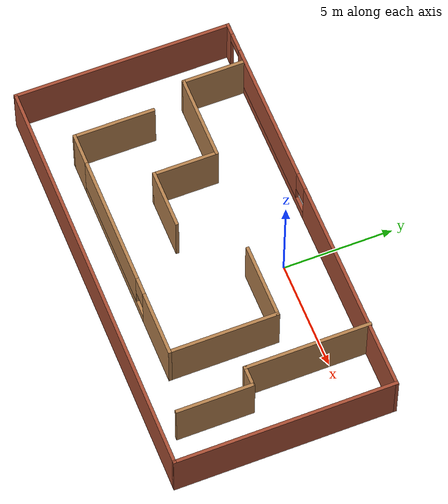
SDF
<?xml version='1.0'?>
<sdf version='1.7'>
  <model name='map'>
    <pose>-1.43573 -3.17598 0 0 -0 0</pose>
    <link name='Wall_0'>
      <collision name='Wall_0_Collision'>
        <geometry>
          <box>
            <size>10 0.15 2.5</size>
          </box>
        </geometry>
        <pose>0 0 1.25 0 -0 0</pose>
      </collision>
      <visual name='Wall_0_Visual'>
        <pose>0 0 1.25 0 -0 0</pose>
        <geometry>
          <box>
            <size>10 0.15 2.5</size>
          </box>
        </geometry>
        <material>
          <script>
            <uri>file://media/materials/scripts/gazebo.material</uri>
            <name>Gazebo/Bricks</name>
          </script>
          <ambient>1 1 1 1</ambient>
        </material>
        <meta>
          <layer>0</layer>
        </meta>
      </visual>
      <pose>-9.425 -0.02313 0 0 -0 -1.5708</pose>
    </link>
    <link name='Wall_10'>
      <collision name='Wall_10_Collision'>
        <geometry>
          <box>
            <size>3 0.15 2.5</size>
          </box>
        </geometry>
        <pose>0 0 1.25 0 -0 0</pose>
      </collision>
      <visual name='Wall_10_Visual'>
        <pose>0 0 1.25 0 -0 0</pose>
        <geometry>
          <box>
            <size>3 0.15 2.5</size>
          </box>
        </geometry>
        <material>
          <script>
            <uri>file://media/materials/scripts/gazebo.material</uri>
            <name>Gazebo/Wood</name>
          </script>
          <ambient>1 1 1 1</ambient>
        </material>
        <meta>
          <layer>0</layer>
        </meta>
      </visual>
      <pose>-7.43577 3.47687 0 0 -0 -1.5708</pose>
    </link>
    <link name='Wall_11'>
      <collision name='Wall_11_Collision'>
        <geometry>
          <box>
            <size>4 0.15 2.5</size>
          </box>
        </geometry>
        <pose>0 0 1.25 0 -0 0</pose>
      </collision>
      <visual name='Wall_11_Visual'>
        <pose>0 0 1.25 0 -0 0</pose>
        <geometry>
          <box>
            <size>4 0.15 2.5</size>
          </box>
        </geometry>
        <material>
          <script>
            <uri>file://media/materials/scripts/gazebo.material</uri>
            <name>Gazebo/Wood</name>
          </script>
          <ambient>1 1 1 1</ambient>
        </material>
        <meta>
          <layer>0</layer>
        </meta>
      </visual>
      <pose>-5.51077 2.05187 0 0 -0 0</pose>
    </link>
    <link name='Wall_12'>
      <collision name='Wall_12_Collision'>
        <geometry>
          <box>
            <size>3 0.15 2.5</size>
          </box>
        </geometry>
        <pose>0 0 1.25 0 -0 0</pose>
      </collision>
      <visual name='Wall_12_Visual'>
        <pose>0 0 1.25 0 -0 0</pose>
        <geometry>
          <box>
            <size>3 0.15 2.5</size>
          </box>
        </geometry>
        <material>
          <script>
            <uri>file://media/materials/scripts/gazebo.material</uri>
            <name>Gazebo/Wood</name>
          </script>
          <ambient>1 1 1 1</ambient>
        </material>
        <meta>
          <layer>0</layer>
        </meta>
      </visual>
      <pose>-3.58577 0.626869 0 0 -0 -1.5708</pose>
    </link>
    <link name='Wall_15'>
      <collision name='Wall_15_Collision'>
        <geometry>
          <box>
            <size>3.5 0.15 2.5</size>
          </box>
        </geometry>
        <pose>0 0 1.25 0 -0 0</pose>
      </collision>
      <visual name='Wall_15_Visual'>
        <pose>0 0 1.25 0 -0 0</pose>
        <geometry>
          <box>
            <size>3.5 0.15 2.5</size>
          </box>
        </geometry>
        <material>
          <script>
            <uri>file://media/materials/scripts/gazebo.material</uri>
            <name>Gazebo/Wood</name>
          </script>
          <ambient>1 1 1 1</ambient>
        </material>
        <meta>
          <layer>0</layer>
        </meta>
      </visual>
      <pose>2.93923 1.55187 0 0 -0 0</pose>
    </link>
    <link name='Wall_16'>
      <collision name='Wall_16_Collision'>
        <geometry>
          <box>
            <size>5 0.15 2.5</size>
          </box>
        </geometry>
        <pose>0 0 1.25 0 -0 0</pose>
      </collision>
      <visual name='Wall_16_Visual'>
        <pose>0 0 1.25 0 -0 0</pose>
        <geometry>
          <box>
            <size>5 0.15 2.5</size>
          </box>
        </geometry>
        <material>
          <script>
            <uri>file://media/materials/scripts/gazebo.material</uri>
            <name>Gazebo/Wood</name>
          </script>
          <ambient>1 1 1 1</ambient>
        </material>
        <meta>
          <layer>0</layer>
        </meta>
      </visual>
      <pose>4.61423 -0.87313 0 0 -0 -1.5708</pose>
    </link>
    <link name='Wall_17'>
      <pose>-0.310768 -3.29813 0 0 -0 3.14159</pose>
      <visual name='Wall_17_Visual_0'>
        <pose>-3.49762 0 1.25 0 -0 0</pose>
        <geometry>
          <box>
            <size>3.00476 0.15 2.5</size>
          </box>
        </geometry>
        <material>
          <script>
            <uri>file://media/materials/scripts/gazebo.material</uri>
            <name>Gazebo/Wood</name>
          </script>
          <ambient>1 1 1 1</ambient>
        </material>
        <meta>
          <layer>0</layer>
        </meta>
      </visual>
      <collision name='Wall_17_Collision_0'>
        <geometry>
          <box>
            <size>3.00476 0.15 2.5</size>
          </box>
        </geometry>
        <pose>-3.49762 0 1.25 0 -0 0</pose>
      </collision>
      <visual name='Wall_17_Visual_1'>
        <pose>1.50238 0 0.25 0 -0 0</pose>
        <geometry>
          <box>
            <size>6.99524 0.15 0.5</size>
          </box>
        </geometry>
        <material>
          <script>
            <uri>file://media/materials/scripts/gazebo.material</uri>
            <name>Gazebo/Wood</name>
          </script>
          <ambient>1 1 1 1</ambient>
        </material>
        <meta>
          <layer>0</layer>
        </meta>
      </visual>
      <collision name='Wall_17_Collision_1'>
        <geometry>
          <box>
            <size>6.99524 0.15 0.5</size>
          </box>
        </geometry>
        <pose>1.50238 0 0.25 0 -0 0</pose>
      </collision>
      <visual name='Wall_17_Visual_2'>
        <pose>1.90238 0 1.5 0 -0 0</pose>
        <geometry>
          <box>
            <size>6.19524 0.15 2</size>
          </box>
        </geometry>
        <material>
          <script>
            <uri>file://media/materials/scripts/gazebo.material</uri>
            <name>Gazebo/Wood</name>
          </script>
          <ambient>1 1 1 1</ambient>
        </material>
        <meta>
          <layer>0</layer>
        </meta>
      </visual>
      <collision name='Wall_17_Collision_2'>
        <geometry>
          <box>
            <size>6.19524 0.15 2</size>
          </box>
        </geometry>
        <pose>1.90238 0 1.5 0 -0 0</pose>
      </collision>
      <visual name='Wall_17_Visual_3'>
        <pose>-1.59524 0 1.9 0 -0 0</pose>
        <geometry>
          <box>
            <size>0.8 0.15 1.2</size>
          </box>
        </geometry>
        <material>
          <script>
            <uri>file://media/materials/scripts/gazebo.material</uri>
            <name>Gazebo/Wood</name>
          </script>
          <ambient>1 1 1 1</ambient>
        </material>
        <meta>
          <layer>0</layer>
        </meta>
      </visual>
      <collision name='Wall_17_Collision_3'>
        <geometry>
          <box>
            <size>0.8 0.15 1.2</size>
          </box>
        </geometry>
        <pose>-1.59524 0 1.9 0 -0 0</pose>
      </collision>
    </link>
    <link name='Wall_18'>
      <collision name='Wall_18_Collision'>
        <geometry>
          <box>
            <size>1.5 0.15 2.5</size>
          </box>
        </geometry>
        <pose>0 0 1.25 0 -0 0</pose>
      </collision>
      <visual name='Wall_18_Visual'>
        <pose>0 0 1.25 0 -0 0</pose>
        <geometry>
          <box>
            <size>1.5 0.15 2.5</size>
          </box>
        </geometry>
        <material>
          <script>
            <uri>file://media/materials/scripts/gazebo.material</uri>
            <name>Gazebo/Wood</name>
          </script>
          <ambient>1 1 1 1</ambient>
        </material>
        <meta>
          <layer>0</layer>
        </meta>
      </visual>
      <pose>-5.91077 -3.29813 0 0 -0 3.14159</pose>
    </link>
    <link name='Wall_19'>
      <collision name='Wall_19_Collision'>
        <geometry>
          <box>
            <size>3.75 0.15 2.5</size>
          </box>
        </geometry>
        <pose>0 0 1.25 0 -0 0</pose>
      </collision>
      <visual name='Wall_19_Visual'>
        <pose>0 0 1.25 0 -0 0</pose>
        <geometry>
          <box>
            <size>3.75 0.15 2.5</size>
          </box>
        </geometry>
        <material>
          <script>
            <uri>file://media/materials/scripts/gazebo.material</uri>
            <name>Gazebo/Wood</name>
          </script>
          <ambient>1 1 1 1</ambient>
        </material>
        <meta>
          <layer>0</layer>
        </meta>
      </visual>
      <pose>-6.58577 -1.49813 0 0 -0 1.5708</pose>
    </link>
    <link name='Wall_2'>
      <collision name='Wall_2_Collision'>
        <geometry>
          <box>
            <size>19 0.15 2.5</size>
          </box>
        </geometry>
        <pose>0 0 1.25 0 -0 0</pose>
      </collision>
      <visual name='Wall_2_Visual'>
        <pose>0 0 1.25 0 -0 0</pose>
        <geometry>
          <box>
            <size>19 0.15 2.5</size>
          </box>
        </geometry>
        <material>
          <script>
            <uri>file://media/materials/scripts/gazebo.material</uri>
            <name>Gazebo/Bricks</name>
          </script>
          <ambient>1 1 1 1</ambient>
        </material>
        <meta>
          <layer>0</layer>
        </meta>
      </visual>
      <pose>0 -4.94813 0 0 -0 0</pose>
    </link>
    <link name='Wall_21'>
      <collision name='Wall_21_Collision'>
        <geometry>
          <box>
            <size>5.75 0.15 2.5</size>
          </box>
        </geometry>
        <pose>0 0 1.25 0 -0 0</pose>
      </collision>
      <visual name='Wall_21_Visual'>
        <pose>0 0 1.25 0 -0 0</pose>
        <geometry>
          <box>
            <size>5.75 0.15 2.5</size>
          </box>
        </geometry>
        <material>
          <script>
            <uri>file://media/materials/scripts/gazebo.material</uri>
            <name>Gazebo/Wood</name>
          </script>
          <ambient>1 1 1 1</ambient>
        </material>
        <meta>
          <layer>0</layer>
        </meta>
      </visual>
      <pose>6.46573 2.14813 0 0 -0 -1.5708</pose>
    </link>
    <link name='Wall_22'>
      <collision name='Wall_22_Collision'>
        <geometry>
          <box>
            <size>1 0.15 2.5</size>
          </box>
        </geometry>
        <pose>0 0 1.25 0 -0 0</pose>
      </collision>
      <visual name='Wall_22_Visual'>
        <pose>0 0 1.25 0 -0 0</pose>
        <geometry>
          <box>
            <size>1 0.15 2.5</size>
          </box>
        </geometry>
        <material>
          <script>
            <uri>file://media/materials/scripts/gazebo.material</uri>
            <name>Gazebo/Wood</name>
          </script>
          <ambient>1 1 1 1</ambient>
        </material>
        <meta>
          <layer>0</layer>
        </meta>
      </visual>
      <pose>6.89073 -0.651869 0 0 -0 0</pose>
    </link>
    <link name='Wall_23'>
      <collision name='Wall_23_Collision'>
        <geometry>
          <box>
            <size>3.5 0.15 2.5</size>
          </box>
        </geometry>
        <pose>0 0 1.25 0 -0 0</pose>
      </collision>
      <visual name='Wall_23_Visual'>
        <pose>0 0 1.25 0 -0 0</pose>
        <geometry>
          <box>
            <size>3.5 0.15 2.5</size>
          </box>
        </geometry>
        <material>
          <script>
            <uri>file://media/materials/scripts/gazebo.material</uri>
            <name>Gazebo/Wood</name>
          </script>
          <ambient>1 1 1 1</ambient>
        </material>
        <meta>
          <layer>0</layer>
        </meta>
      </visual>
      <pose>7.31573 -2.32687 0 0 -0 -1.5708</pose>
    </link>
    <link name='Wall_25'>
      <collision name='Wall_25_Collision'>
        <geometry>
          <box>
            <size>2.75 0.15 2.5</size>
          </box>
        </geometry>
        <pose>0 0 1.25 0 -0 0</pose>
      </collision>
      <visual name='Wall_25_Visual'>
        <pose>0 0 1.25 0 -0 0</pose>
        <geometry>
          <box>
            <size>2.75 0.15 2.5</size>
          </box>
        </geometry>
        <material>
          <script>
            <uri>file://media/materials/scripts/gazebo.material</uri>
            <name>Gazebo/Wood</name>
          </script>
          <ambient>1 1 1 1</ambient>
        </material>
        <meta>
          <layer>0</layer>
        </meta>
      </visual>
      <pose>-2.28577 -0.798131 0 0 -0 0</pose>
    </link>
    <link name='Wall_4'>
      <collision name='Wall_4_Collision'>
        <geometry>
          <box>
            <size>10 0.15 2.5</size>
          </box>
        </geometry>
        <pose>0 0 1.25 0 -0 0</pose>
      </collision>
      <visual name='Wall_4_Visual'>
        <pose>0 0 1.25 0 -0 0</pose>
        <geometry>
          <box>
            <size>10 0.15 2.5</size>
          </box>
        </geometry>
        <material>
          <script>
            <uri>file://media/materials/scripts/gazebo.material</uri>
            <name>Gazebo/Bricks</name>
          </script>
          <ambient>1 1 1 1</ambient>
        </material>
        <meta>
          <layer>0</layer>
        </meta>
      </visual>
      <pose>9.425 -0.02313 0 0 -0 1.5708</pose>
    </link>
    <link name='Wall_5'>
      <pose>0 4.90187 0 0 -0 3.14159</pose>
      <visual name='Wall_5_Visual_0'>
        <pose>-4.48197 0 1.25 0 -0 0</pose>
        <geometry>
          <box>
            <size>10.0361 0.15 2.5</size>
          </box>
        </geometry>
        <material>
          <script>
            <uri>file://media/materials/scripts/gazebo.material</uri>
            <name>Gazebo/Bricks</name>
          </script>
          <ambient>1 1 1 1</ambient>
        </material>
        <meta>
          <layer>0</layer>
        </meta>
      </visual>
      <collision name='Wall_5_Collision_0'>
        <geometry>
          <box>
            <size>10.0361 0.15 2.5</size>
          </box>
        </geometry>
        <pose>-4.48197 0 1.25 0 -0 0</pose>
      </collision>
      <visual name='Wall_5_Visual_1'>
        <pose>9.21332 0 1.25 0 -0 0</pose>
        <geometry>
          <box>
            <size>0.573355 0.15 2.5</size>
          </box>
        </geometry>
        <material>
          <script>
            <uri>file://media/materials/scripts/gazebo.material</uri>
            <name>Gazebo/Bricks</name>
          </script>
          <ambient>1 1 1 1</ambient>
        </material>
        <meta>
          <layer>0</layer>
        </meta>
      </visual>
      <collision name='Wall_5_Collision_1'>
        <geometry>
          <box>
            <size>0.573355 0.15 2.5</size>
          </box>
        </geometry>
        <pose>9.21332 0 1.25 0 -0 0</pose>
      </collision>
      <visual name='Wall_5_Visual_2'>
        <pose>4.28136 0 0.25 0 -0 0</pose>
        <geometry>
          <box>
            <size>7.49058 0.15 0.5</size>
          </box>
        </geometry>
        <material>
          <script>
            <uri>file://media/materials/scripts/gazebo.material</uri>
            <name>Gazebo/Bricks</name>
          </script>
          <ambient>1 1 1 1</ambient>
        </material>
        <meta>
          <layer>0</layer>
        </meta>
      </visual>
      <collision name='Wall_5_Collision_2'>
        <geometry>
          <box>
            <size>7.49058 0.15 0.5</size>
          </box>
        </geometry>
        <pose>4.28136 0 0.25 0 -0 0</pose>
      </collision>
      <visual name='Wall_5_Visual_3'>
        <pose>4.68136 0 1.5 0 -0 0</pose>
        <geometry>
          <box>
            <size>6.69058 0.15 2</size>
          </box>
        </geometry>
        <material>
          <script>
            <uri>file://media/materials/scripts/gazebo.material</uri>
            <name>Gazebo/Bricks</name>
          </script>
          <ambient>1 1 1 1</ambient>
        </material>
        <meta>
          <layer>0</layer>
        </meta>
      </visual>
      <collision name='Wall_5_Collision_3'>
        <geometry>
          <box>
            <size>6.69058 0.15 2</size>
          </box>
        </geometry>
        <pose>4.68136 0 1.5 0 -0 0</pose>
      </collision>
      <visual name='Wall_5_Visual_4'>
        <pose>0.936067 0 1.9 0 -0 0</pose>
        <geometry>
          <box>
            <size>0.8 0.15 1.2</size>
          </box>
        </geometry>
        <material>
          <script>
            <uri>file://media/materials/scripts/gazebo.material</uri>
            <name>Gazebo/Bricks</name>
          </script>
          <ambient>1 1 1 1</ambient>
        </material>
        <meta>
          <layer>0</layer>
        </meta>
      </visual>
      <collision name='Wall_5_Collision_4'>
        <geometry>
          <box>
            <size>0.8 0.15 1.2</size>
          </box>
        </geometry>
        <pose>0.936067 0 1.9 0 -0 0</pose>
      </collision>
      <visual name='Wall_5_Visual_5'>
        <pose>8.47664 0 2.25 0 -0 0</pose>
        <geometry>
          <box>
            <size>0.9 0.15 0.5</size>
          </box>
        </geometry>
        <material>
          <script>
            <uri>file://media/materials/scripts/gazebo.material</uri>
            <name>Gazebo/Bricks</name>
          </script>
          <ambient>1 1 1 1</ambient>
        </material>
        <meta>
          <layer>0</layer>
        </meta>
      </visual>
      <collision name='Wall_5_Collision_5'>
        <geometry>
          <box>
            <size>0.9 0.15 0.5</size>
          </box>
        </geometry>
        <pose>8.47664 0 2.25 0 -0 0</pose>
      </collision>
    </link>
    <static>1</static>
  </model>
</sdf>
